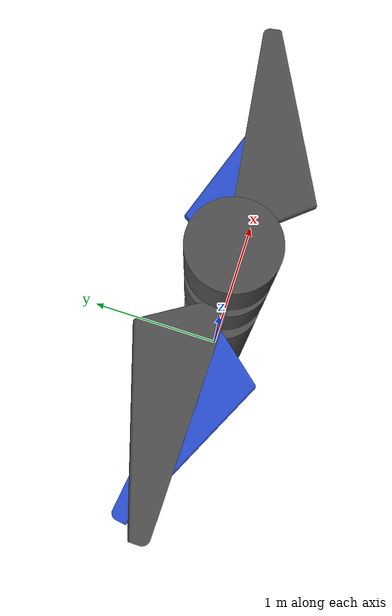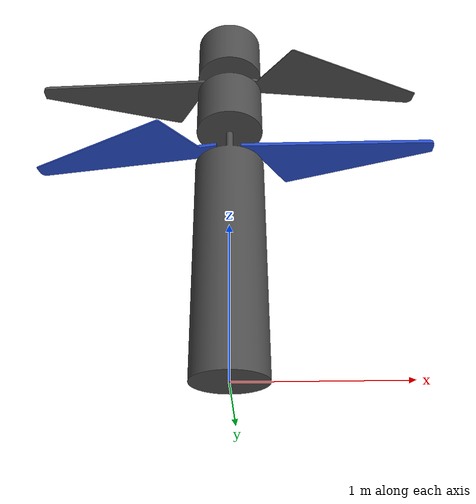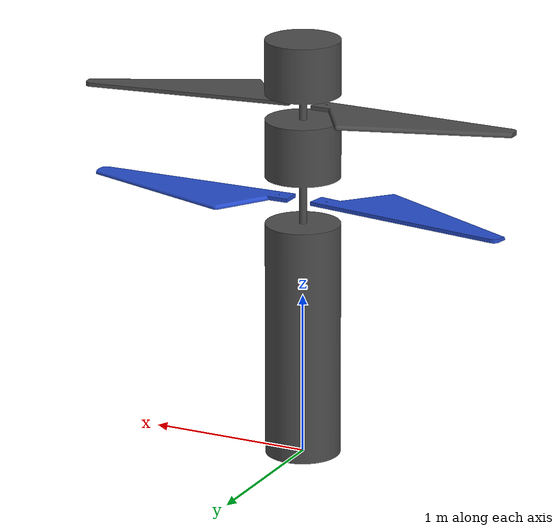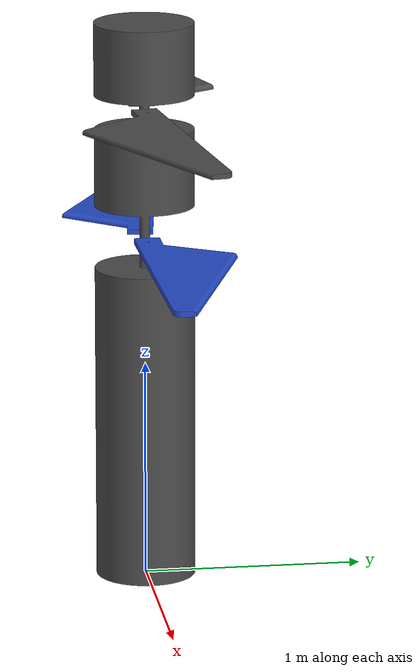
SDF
<?xml version="1.0"?>
<sdf version='1.5'>
  <model name='testversion11'>
    <pose>0 0 0 0 0 0</pose>
    <link name='base_link'>
      <pose>0 0 0 0 0 0</pose>
      <inertial>
        <pose>0 0 0 0 0 0</pose>
        <mass>4.134</mass>
        <inertia>
          <ixx>0.225</ixx>
          <ixy>0</ixy>
          <ixz>0</ixz>
          <iyx>0</iyx>
          <iyy>0.225</iyy>
          <iyz>0</iyz>
          <izx>0</izx>
          <izy>0</izy>
          <izz>0.008</izz>
        </inertia>
      </inertial>
      <collision name='base_link_collision'>
        <pose>0 0 0 1.5708 0 0</pose>
        <geometry>
          <mesh>
            <scale>0.1 0.1 0.1</scale>
            <uri>model://testversion5/meshes/frame.obj</uri>
          </mesh>
        </geometry>
        <surface>
          <contact>
            <ode>
              <kp>100000</kp>
              <kd>1.0</kd>
              <max_vel>0.1</max_vel>
              <min_depth>0.001</min_depth>
            </ode>
          </contact>
          <friction>
            <ode/>
          </friction>
        </surface>
      </collision>
      <visual name='base_link_visual'>
        <pose>0 0 0 1.5708 0 0</pose>
        <geometry>
          <mesh>
            <scale>0.1 0.1 0.1</scale>
            <uri>model://testversion11/meshes/frame.obj</uri>
          </mesh>
        </geometry>
        <material>
          <script>
            <name>Gazebo/DarkGrey</name>
            <uri>__default__</uri>
          </script>
        </material>
      </visual>
      <gravity>1</gravity>
      <velocity_decay/>
      <self_collide>0</self_collide>
    </link>

    <link name='tiltrotor/imu_link'>
      <pose>0 0 0 0 0 0</pose>
      <inertial>
        <pose>0 0 0 0 0 0</pose>
        <mass>0.015</mass>
        <inertia>
          <ixx>1e-05</ixx>
          <ixy>0</ixy>
          <ixz>0</ixz>
          <iyx>0</iyx>
          <iyy>1e-05</iyy>
          <iyz>0</iyz>
          <izx>0</izx>
          <izy>0</izy>
          <izz>1e-05</izz>
        </inertia>
      </inertial>
    </link>
    <joint name='tiltrotor/imu_joint' type='revolute'>
      <child>tiltrotor/imu_link</child>
      <parent>base_link</parent>
      <axis>
        <xyz>1 0 0</xyz>
        <limit>
          <lower>0</lower>
          <upper>0</upper>
          <effort>0</effort>
          <velocity>0</velocity>
        </limit>
        <dynamics>
          <spring_reference>0</spring_reference>
          <spring_stiffness>0</spring_stiffness>
        </dynamics>
        <use_parent_model_frame>1</use_parent_model_frame>
      </axis>
    </joint>

    <link name='motor_0'>
      <pose>0 0 1.6 0 0 0</pose>
      <inertial>
        <mass>0.136</mass>
        <inertia>
          <ixx>6.447e-005</ixx>
          <ixy>0</ixy>
          <ixz>0</ixz>
          <iyx>0</iyx>
          <iyy>6.447e-005</iyy>
          <iyz>0</iyz>
          <izx>0</izx>
          <izy>0</izy>
          <izz>1.086e-004</izz>
        </inertia>
      </inertial>
    </link>

    <joint name='motor_0_joint' type='revolute'>
      <child>motor_0</child>
      <parent>base_link</parent>
      <axis>
        <xyz>1 0 0</xyz>
        <limit>
          <lower>-0.2</lower>
          <upper>0.2</upper>
        </limit>
        <dynamics>
          <spring_reference>0</spring_reference>
          <spring_stiffness>0</spring_stiffness>
        </dynamics>
        <use_parent_model_frame>1</use_parent_model_frame>
      </axis>
    </joint>

    <link name='rotor_0'>
      <pose>0 0 1.6 0 0 0</pose>
      <inertial>
        <pose>0 0 0 0 0 0</pose>
        <mass>0.061</mass>
        <inertia>
          <ixx>7.507e-005</ixx>
          <ixy>-2.358e-004</ixy>
          <ixz>0</ixz>
          <iyx>-2.358e-004</iyx>
          <iyy>0.002</iyy>
          <iyz>0</iyz>
          <izx>0</izx>
          <izy>0</izy>
          <izz>0.002</izz>
        </inertia>
      </inertial>
      <visual name='rotor_0_visual'>
        <pose>0 0 0 1.5708 0 0</pose>
        <geometry>
          <mesh>
            <scale>0.1 0.1 0.1</scale>
            <uri>model://testversion11/meshes/blade_lower.obj</uri>
          </mesh>
        </geometry>
        <material>
          <script>
            <name>Gazebo/Blue</name>
            <uri>__default__</uri>
          </script>
        </material>
      </visual>
      <gravity>1</gravity>
      <velocity_decay/>
      <self_collide>0</self_collide>
    </link>
    <joint name='rotor_0_joint' type='revolute'>
      <child>rotor_0</child>
      <parent>motor_0</parent>
      <axis>
        <xyz>0 0 1</xyz>
        <limit>
          <lower>-1e+16</lower>
          <upper>1e+16</upper>
        </limit>
        <dynamics>
          <spring_reference>0</spring_reference>
          <spring_stiffness>0</spring_stiffness>
        </dynamics>
        <use_parent_model_frame>1</use_parent_model_frame>
      </axis>
    </joint>

    <link name='motor_1'>
      <pose>0 0 2.2 0 0 0</pose>
      <inertial>
        <mass>0.136</mass>
        <inertia>
          <ixx>6.447e-005</ixx>
          <ixy>0</ixy>
          <ixz>0</ixz>
          <iyx>0</iyx>
          <iyy>6.447e-005</iyy>
          <iyz>0</iyz>
          <izx>0</izx>
          <izy>0</izy>
          <izz>1.086e-004</izz>
        </inertia>
      </inertial>
    </link>

    <joint name='motor_1_joint' type='revolute'>
      <child>motor_1</child>
      <parent>base_link</parent>
      <axis>
        <xyz>0 1 0</xyz>
        <limit>
          <lower>-0.2</lower>
          <upper>0.2</upper>
        </limit>
        <dynamics>
          <spring_reference>0</spring_reference>
          <spring_stiffness>0</spring_stiffness>
        </dynamics>
        <use_parent_model_frame>0</use_parent_model_frame>
      </axis>
    </joint>

    <link name='rotor_1'>
      <pose>0 0 2.2 0 0 0</pose>
      <inertial>
        <pose>0 0 0 0 0 0</pose>
        <mass>0.061</mass>
        <inertia>
          <ixx>7.507e-005</ixx>
          <ixy>2.358e-004</ixy>
          <ixz>0</ixz>
          <iyx>2.358e-004</iyx>
          <iyy>0.002</iyy>
          <iyz>0</iyz>
          <izx>0</izx>
          <izy>0</izy>
          <izz>0.002</izz>
        </inertia>
      </inertial>
      <visual name='rotor_1_visual'>
        <pose>0 0 0 1.5708 0 0</pose>
        <geometry>
          <mesh>
            <scale>0.1 0.1 0.1</scale>
            <uri>model://testversion11/meshes/blade_upper.obj</uri>
          </mesh>
        </geometry>
        <material>
          <script>
            <name>Gazebo/DarkGrey</name>
            <uri>__default__</uri>
          </script>
        </material>
      </visual>
      <gravity>1</gravity>
      <velocity_decay/>
      <self_collide>0</self_collide>
    </link>
    <joint name='rotor_1_joint' type='revolute'>
      <child>rotor_1</child>
      <parent>motor_1</parent>
      <axis>
        <xyz>0 0 1</xyz>
        <limit>
          <lower>-1e+16</lower>
          <upper>1e+16</upper>
        </limit>
        <dynamics>
          <spring_reference>0</spring_reference>
          <spring_stiffness>0</spring_stiffness>
        </dynamics>
        <use_parent_model_frame>0</use_parent_model_frame>
      </axis>
    </joint>

    <plugin name='down_motor_model' filename='libgazebo_motor_model.so'>
      <robotNamespace></robotNamespace>
      <jointName>rotor_0_joint</jointName>
      <linkName>rotor_0</linkName>
      <turningDirection>cw</turningDirection>
      <timeConstantUp>0.0125</timeConstantUp>
      <timeConstantDown>0.025</timeConstantDown>
      <maxRotVelocity>3000</maxRotVelocity>
      <motorConstant>8.54858e-06</motorConstant>
      <momentConstant>0.06</momentConstant>
      <commandSubTopic>/gazebo/command/motor_speed</commandSubTopic>
      <motorNumber>4</motorNumber>
      <rotorDragCoefficient>0.0000806428</rotorDragCoefficient>
      <rollingMomentCoefficient>0</rollingMomentCoefficient>
      <motorSpeedPubTopic>/motor_speed/4</motorSpeedPubTopic>
      <rotorVelocitySlowdownSim>20</rotorVelocitySlowdownSim>
    </plugin>

    <plugin name='up_motor_model' filename='libgazebo_motor_model.so'>
      <robotNamespace></robotNamespace>
      <jointName>rotor_1_joint</jointName>
      <linkName>rotor_1</linkName>
      <turningDirection>ccw</turningDirection>
      <timeConstantUp>0.0125</timeConstantUp>
      <timeConstantDown>0.025</timeConstantDown>
      <maxRotVelocity>3000</maxRotVelocity>
      <motorConstant>8.54858e-06</motorConstant>
      <momentConstant>0.06</momentConstant>
      <commandSubTopic>/gazebo/command/motor_speed</commandSubTopic>
      <motorNumber>3</motorNumber>
      <rotorDragCoefficient>0.0000806428</rotorDragCoefficient>
      <rollingMomentCoefficient>0</rollingMomentCoefficient>
      <motorSpeedPubTopic>/motor_speed/3</motorSpeedPubTopic>
      <rotorVelocitySlowdownSim>20</rotorVelocitySlowdownSim>
    </plugin>

    <plugin name='gazebo_imu_plugin' filename='libgazebo_imu_plugin.so'>
      <robotNamespace></robotNamespace>
      <linkName>tiltrotor/imu_link</linkName>
      <imuTopic>/imu</imuTopic>
      <gyroscopeNoiseDensity>0.0003394</gyroscopeNoiseDensity>
      <gyroscopeRandomWalk>3.8785e-05</gyroscopeRandomWalk>
      <gyroscopeBiasCorrelationTime>1000.0</gyroscopeBiasCorrelationTime>
      <gyroscopeTurnOnBiasSigma>0.0087</gyroscopeTurnOnBiasSigma>
      <accelerometerNoiseDensity>0.004</accelerometerNoiseDensity>
      <accelerometerRandomWalk>0.006</accelerometerRandomWalk>
      <accelerometerBiasCorrelationTime>300.0</accelerometerBiasCorrelationTime>
      <accelerometerTurnOnBiasSigma>0.196</accelerometerTurnOnBiasSigma>
    </plugin>

    <plugin name="gps_plugin" filename="libgazebo_gps_plugin.so">
        <robotNamespace></robotNamespace>
        <gpsNoise>true</gpsNoise>
    </plugin>
    <plugin name='magnetometer_plugin' filename='libgazebo_magnetometer_plugin.so'>
      <robotNamespace/>
      <pubRate>20</pubRate>
      <noiseDensity>0.0004</noiseDensity>
      <randomWalk>6.4e-06</randomWalk>
      <biasCorrelationTime>600</biasCorrelationTime>
      <magTopic>/mag</magTopic>
    </plugin>
    <plugin name='barometer_plugin' filename='libgazebo_barometer_plugin.so'>
      <robotNamespace/>
      <pubRate>10</pubRate>
      <baroTopic>/baro</baroTopic>
    </plugin>
    <plugin name='mavlink_interface' filename='libgazebo_mavlink_interface.so'>
      <robotNamespace></robotNamespace>
      <imuSubTopic>/imu</imuSubTopic>
      <gpsSubTopic>/gps</gpsSubTopic>
      <magSubTopic>/mag</magSubTopic>
      <baroSubTopic>/baro</baroSubTopic>
      <mavlink_addr>INADDR_ANY</mavlink_addr>
      <mavlink_udp_port>14560</mavlink_udp_port>
      <serialEnabled>false</serialEnabled>
      <serialDevice>/dev/ttyACM0</serialDevice>
      <baudRate>921600</baudRate>
      <qgc_addr>INADDR_ANY</qgc_addr>
      <qgc_udp_port>14550</qgc_udp_port>
      <sdk_addr>INADDR_ANY</sdk_addr>
      <sdk_udp_port>14540</sdk_udp_port>
      <hil_mode>false</hil_mode>
      <hil_state_level>false</hil_state_level>
      <enable_lockstep>true</enable_lockstep>
      <use_tcp>true</use_tcp>
      <motorSpeedCommandPubTopic>/gazebo/command/motor_speed</motorSpeedCommandPubTopic>
      <control_channels>

        <channel name="rotor1">
          <input_index>3</input_index>
          <input_offset>0</input_offset>
          <input_scaling>2500</input_scaling>
          <zero_position_disarmed>0</zero_position_disarmed>
          <zero_position_armed>0</zero_position_armed>
          <joint_control_type>velocity</joint_control_type>
          <joint_name>rotor_1_joint</joint_name>
        </channel>

        <channel name="rotor0">
          <input_index>4</input_index>
          <input_offset>0</input_offset>
          <input_scaling>2500</input_scaling>
          <zero_position_disarmed>0</zero_position_disarmed>
          <zero_position_armed>0</zero_position_armed>
          <joint_control_type>velocity</joint_control_type>
          <joint_name>rotor_0_joint</joint_name>
        </channel>

        <channel name="motor0_tilt">
          <input_index>1</input_index>
          <input_offset>0</input_offset>
          <input_scaling>0.6</input_scaling>
          <zero_position_disarmed>0</zero_position_disarmed>
          <zero_position_armed>0</zero_position_armed>
          <joint_control_type>position</joint_control_type>
          <joint_name>motor_0_joint</joint_name>
           <joint_control_pid>
            <p>1</p>
            <i>0.03</i>
            <d>0.9</d>
            <iMax>0.0</iMax>
            <iMin>0.0</iMin>
            <cmdMax>1</cmdMax>
            <cmdMin>-1</cmdMin>
          </joint_control_pid>
        </channel>

        <channel name="motor1_tilt">
          <input_index>0</input_index>
          <input_offset>-0</input_offset>
          <input_scaling>0.6</input_scaling>
          <zero_position_disarmed>0</zero_position_disarmed>
          <zero_position_armed>0</zero_position_armed>
          <joint_control_type>position</joint_control_type>
          <joint_name>motor_1_joint</joint_name>
           <joint_control_pid>
            <p>1</p>
            <i>0.03</i>
            <d>0.9</d>
            <iMax>0.0</iMax>
            <iMin>0.0</iMin>
            <cmdMax>1</cmdMax>
            <cmdMin>-1</cmdMin>
          </joint_control_pid>
        </channel>

      </control_channels>
    </plugin>
    <static>0</static>
  </model>
</sdf>
